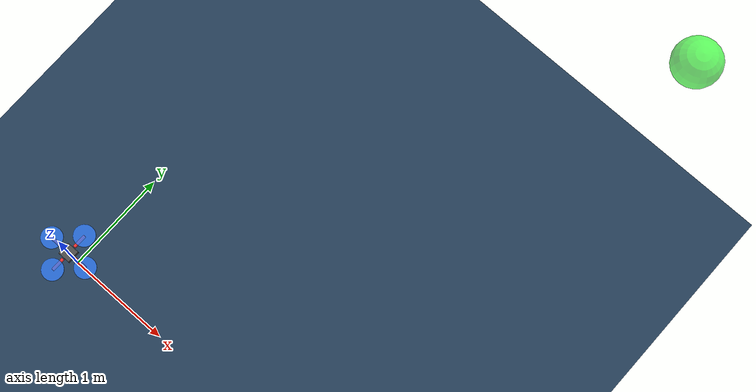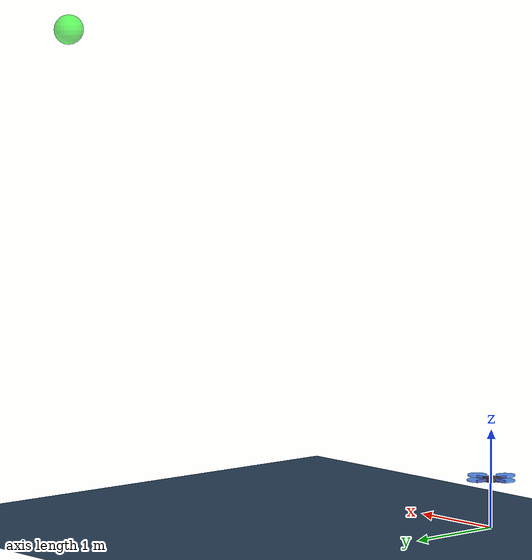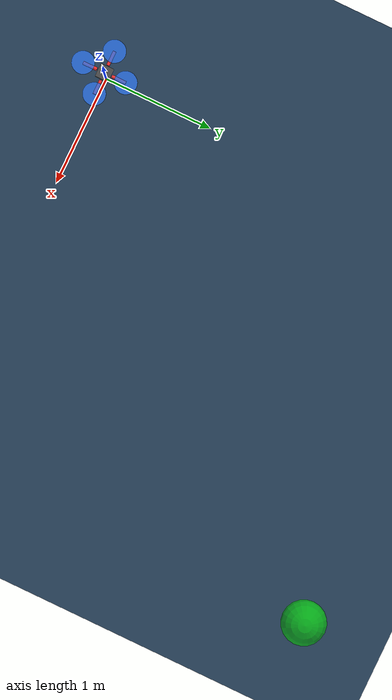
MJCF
<mujoco model="quadrotor_offline">
  <compiler angle="radian" coordinate="local" inertiafromgeom="true"/>

  <option timestep="0.01" gravity="0 0 -9.81">
    <flag warmstart="enable"/>
  </option>

  <visual>
    <global offwidth="1280" offheight="960"/>
    <quality shadowsize="4096"/>
    <map force="0.1" fogstart="10" fogend="15"/>
    <headlight ambient="0.6 0.6 0.6" diffuse="0.9 0.9 0.9" specular="0.4 0.4 0.4"/>
  </visual>

  <asset>
    <texture type="skybox" builtin="gradient" rgb1="0.3 0.5 0.7" rgb2="0 0 0" width="512" height="3072"/>
    <texture type="2d" name="groundplane" builtin="checker" mark="edge" rgb1="0.2 0.3 0.4" rgb2="0.1 0.2 0.3"
      markrgb="0.8 0.8 0.8" width="300" height="300"/>
    <material name="groundplane" texture="groundplane" texuniform="true" texrepeat="5 5" reflectance="0.2"/>

    <!-- Quadrotor materials -->
    <material name="body_mat" rgba="0.3 0.3 0.3 1"/>
    <material name="rotor_mat" rgba="0.2 0.5 1 0.8"/>
    <material name="arm_mat" rgba="1 0.2 0.2 1"/>
    <material name="target_mat" rgba="0 1 0 0.6"/>
    <material name="trajectory_mat" rgba="1 0.5 0 0.8"/>
  </asset>

  <worldbody>
    <light pos="0 0 10" dir="0 0 -1" directional="true"/>
    <light pos="5 5 8" dir="-0.5 -0.5 -1" directional="false" diffuse="0.5 0.5 0.5"/>
    <geom name="floor" size="0 0 0.05" type="plane" material="groundplane" friction="1.0 0.01 0.001"/>

    <!-- Reference target (green sphere at goal position) -->
    <body name="target" pos="3 3 5">
      <geom name="target_geom" type="sphere" size="0.15" material="target_mat"
            contype="0" conaffinity="0"/>
    </body>

    <!-- Quadrotor body -->
    <body name="quadrotor" pos="0 0 0.5">
      <!-- Main body (center) -->
      <freejoint name="root"/>

      <!-- Core body -->
      <geom name="core" type="box" size="0.06 0.06 0.025" material="body_mat"
            mass="0.4" contype="1" conaffinity="1"/>

      <!-- Inertial properties matching task.info -->
      <inertial pos="0 0 0" mass="0.546"
                diaginertia="2.32e-3 2.32e-3 3e-4"/>

      <!-- Arms and rotors -->
      <!-- Front arm (X+) -->
      <geom name="arm_front" type="cylinder" fromto="0.07 0 0 0.20 0 0"
            size="0.015" material="arm_mat" mass="0.04"/>
      <geom name="rotor_front" type="cylinder" pos="0.20 0 0.015"
            size="0.10 0.008" material="rotor_mat" mass="0.02"/>

      <!-- Back arm (X-) -->
      <geom name="arm_back" type="cylinder" fromto="-0.07 0 0 -0.20 0 0"
            size="0.015" material="arm_mat" mass="0.04"/>
      <geom name="rotor_back" type="cylinder" pos="-0.20 0 0.015"
            size="0.10 0.008" material="rotor_mat" mass="0.02"/>

      <!-- Right arm (Y+) -->
      <geom name="arm_right" type="cylinder" fromto="0 0.07 0 0 0.20 0"
            size="0.015" material="arm_mat" mass="0.04"/>
      <geom name="rotor_right" type="cylinder" pos="0 0.20 0.015"
            size="0.10 0.008" material="rotor_mat" mass="0.02"/>

      <!-- Left arm (Y-) -->
      <geom name="arm_left" type="cylinder" fromto="0 -0.07 0 0 -0.20 0"
            size="0.015" material="arm_mat" mass="0.04"/>
      <geom name="rotor_left" type="cylinder" pos="0 -0.20 0.015"
            size="0.10 0.008" material="rotor_mat" mass="0.02"/>

      <!-- Camera attached to quadrotor -->
      <camera name="onboard" pos="0 0 0.1" euler="0 0 0" fovy="90"/>
    </body>
  </worldbody>
</mujoco>
